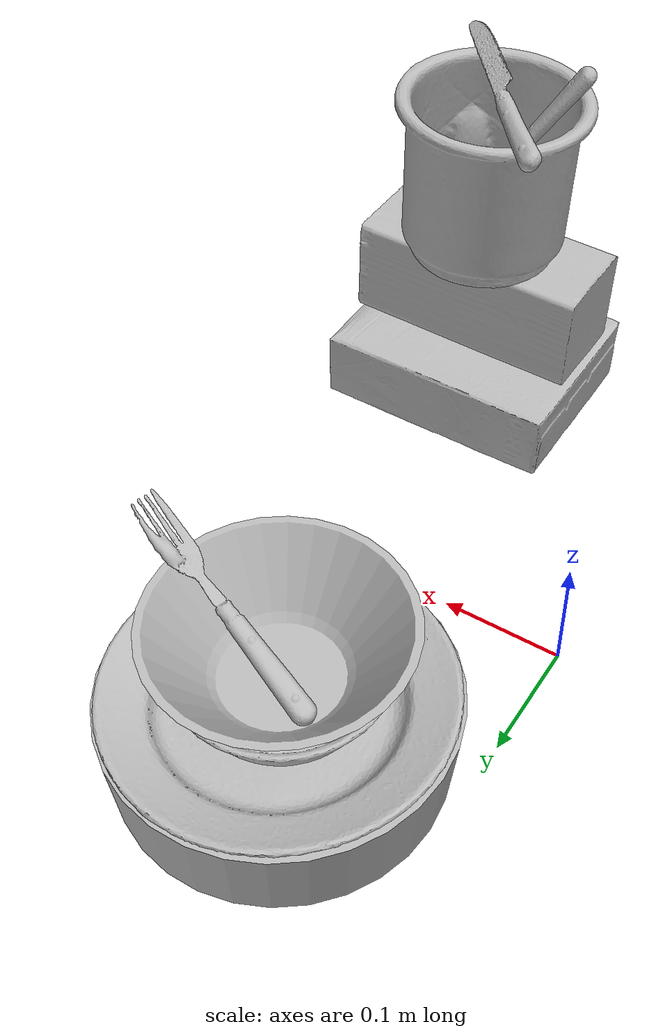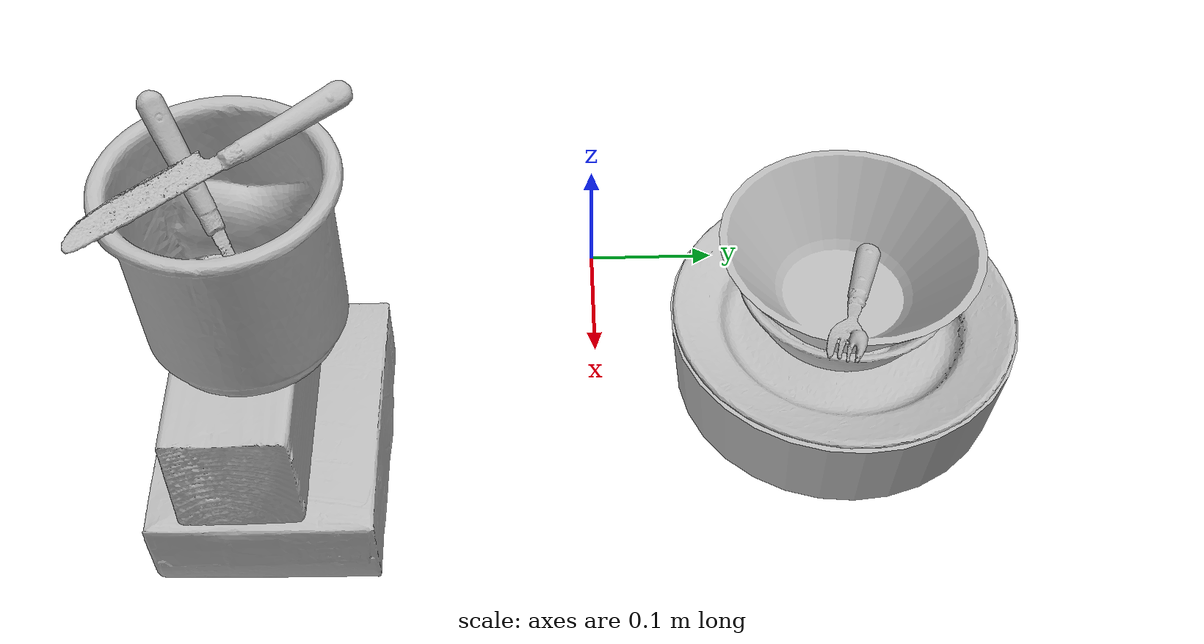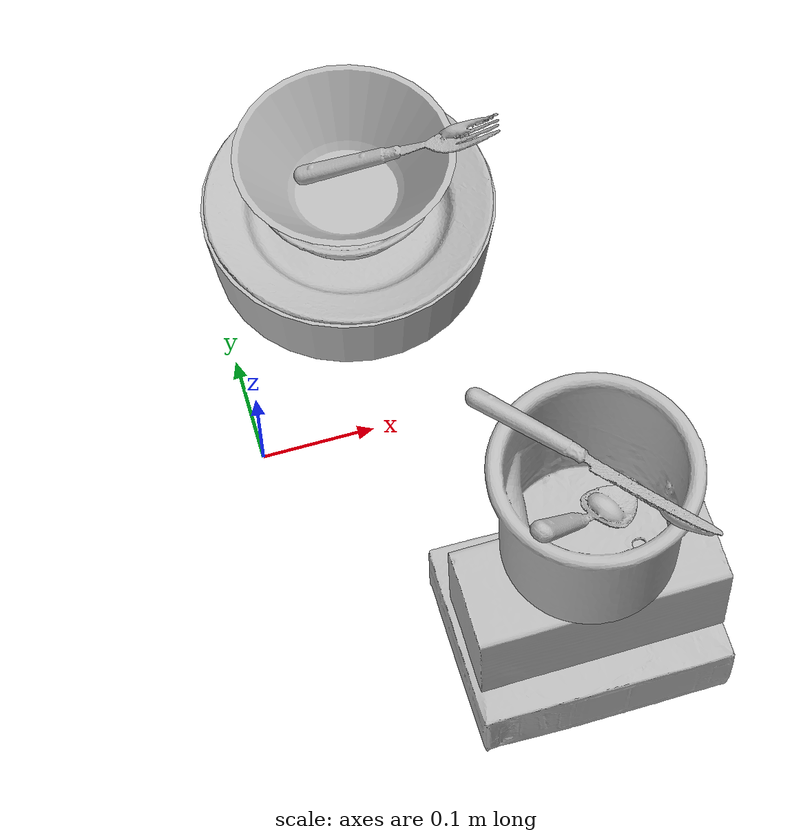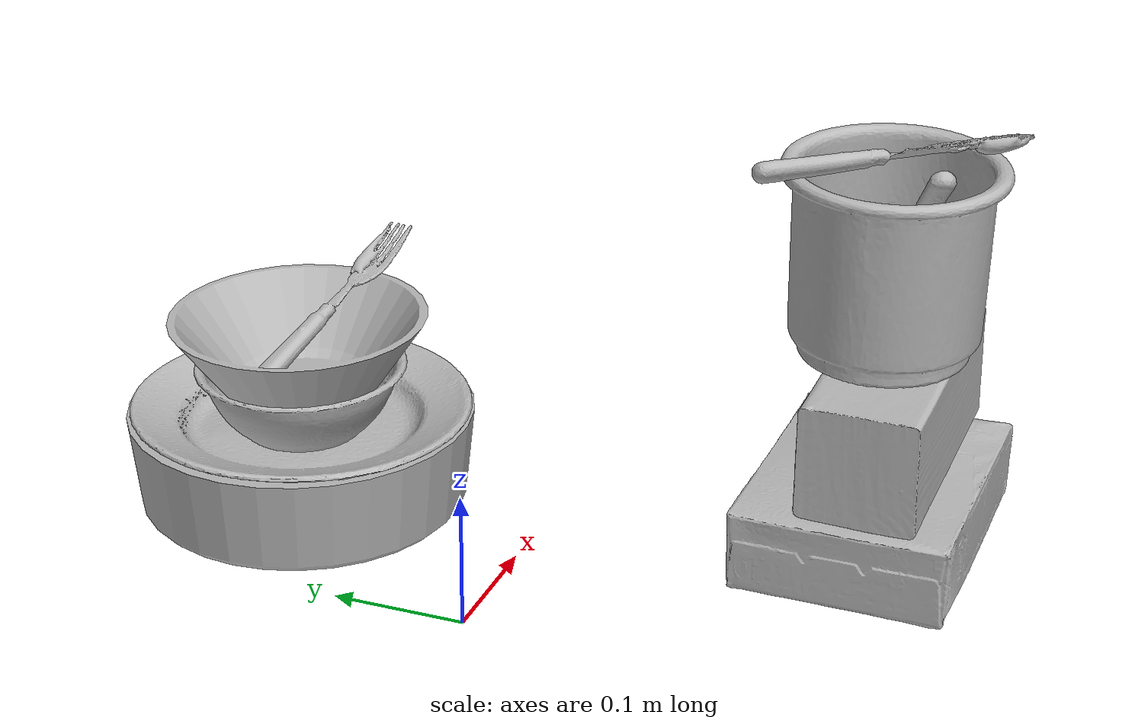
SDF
<?xml version="1.0" ?>
<sdf version="1.4">

  <world name="default">

    <light name="light1" type="point">

      <pose>0 0 1 0 0 0</pose>

      <diffuse>3 3 3 1</diffuse>

      <specular>3 3 3 1</specular>

    </light>

    <light name="light2" type="point">

      <pose>0 0.5 2 0 0 0</pose>

      <diffuse>1 1 1 1</diffuse>

      <specular>1 1 1 1</specular>

    </light>

    <light name="light3" type="point">

      <pose>0 0.5 2 0 0 0</pose>

      <diffuse>3 3 3 1</diffuse>

      <specular>3 3 3 1</specular>

    </light>

    <scene>

      <ambient>0.7 0.7 0.7</ambient>

    </scene>

    <model name="plate1">

      <link name="link_plate1">

        <collision name="default">

          <geometry>

            <mesh>

              <uri>model://pan_tefal/collision_meshes/collision.obj</uri>

              <scale>1.0 1.0 1.0</scale>

            </mesh>

          </geometry>

          <surface>

            <friction>

              <ode>

                <mu>0.5</mu>

                <mu2>0.5</mu2>

              </ode>

            </friction>

          </surface>

        </collision>

        <visual name="default">

          <geometry>

            <mesh>

              <uri>model://pan_tefal/visual_meshes/visual.dae</uri>

              <scale>1.0 1.0 1.0</scale>

            </mesh>

          </geometry>

        </visual>

        <inertial>

          <mass>1.083925485610962</mass>

          <pose>-0.00018002053548116237 3.279013617429882e-05 -0.00851493701338768 0.000819031166138591 -0.00033013701589440335 -0.33186472787035126</pose>

          <inertia>

            <ixx>0.0074822875</ixx>

            <iyy>0.0075305253</iyy>

            <izz>0.013773448</izz>

            <ixy>0</ixy>

            <ixz>0</ixz>

            <iyz>0</iyz>

          </inertia>

        </inertial>

      </link>

      <pose>0.13136087357997894 0.18924929201602936 0.037966348230838776 0.00045067527547456047 0.0004546961856148881 0.006631891285001137</pose>

    </model>

    <model name="plate2">

      <link name="link_plate2">

        <collision name="default">

          <geometry>

            <mesh>

              <uri>model://plate/collision_meshes/collision.obj</uri>

              <scale>1.0 1.0 1.0</scale>

            </mesh>

          </geometry>

          <surface>

            <friction>

              <ode>

                <mu>0.5</mu>

                <mu2>0.5</mu2>

              </ode>

            </friction>

          </surface>

        </collision>

        <visual name="default">

          <geometry>

            <mesh>

              <uri>model://plate/visual_meshes/visual.dae</uri>

              <scale>1.0 1.0 1.0</scale>

            </mesh>

          </geometry>

        </visual>

        <inertial>

          <mass>0.26740342378616333</mass>

          <pose>-0.00060446304269135 0.00027825793949887156 -0.0010561994276940823 0.0022187903743134635 -0.0032254779444460427 0.4526079808055429</pose>

          <inertia>

            <ixx>0.0012509191</ixx>

            <iyy>0.0012389544</iyy>

            <izz>0.00244661</izz>

            <ixy>0</ixy>

            <ixz>0</ixz>

            <iyz>0</iyz>

          </inertia>

        </inertial>

      </link>

      <pose>0.13150139153003693 0.18906836211681366 0.06939858198165894 -0.0005037719592959892 0.008971982772756624 -0.011636055546268287</pose>

    </model>

    <model name="bowl1">

      <link name="link_bowl1">

        <collision name="default">

          <geometry>

            <mesh>

              <uri>model://bowl/collision_meshes/collision.obj</uri>

              <scale>1.0 1.0 1.0</scale>

            </mesh>

          </geometry>

          <surface>

            <friction>

              <ode>

                <mu>0.5</mu>

                <mu2>0.5</mu2>

              </ode>

            </friction>

          </surface>

        </collision>

        <visual name="default">

          <geometry>

            <mesh>

              <uri>model://bowl/visual_meshes/visual.dae</uri>

              <scale>1.0 1.0 1.0</scale>

            </mesh>

          </geometry>

        </visual>

        <inertial>

          <mass>0.062040042132139206</mass>

          <pose>0.00020445157133508474 -0.001030211104080081 -0.0008042659028433263 -0.01576411046463803 0.014546752923574583 0.7140383763158871</pose>

          <inertia>

            <ixx>0.00014251085</ixx>

            <iyy>0.0001393266</iyy>

            <izz>0.00023975229</izz>

            <ixy>0</ixy>

            <ixz>0</ixz>

            <iyz>0</iyz>

          </inertia>

        </inertial>

      </link>

      <pose>0.1291602998971939 0.18689005076885223 0.08747554570436478 0.0025102969258734872 -0.0009751791408932488 -0.015012168248557896</pose>

    </model>

    <model name="bowl2">

      <link name="link_bowl2">

        <collision name="default">

          <geometry>

            <mesh>

              <uri>model://bowl_a/collision_meshes/collision.obj</uri>

              <scale>1.0 1.0 1.0</scale>

            </mesh>

          </geometry>

          <surface>

            <friction>

              <ode>

                <mu>0.5</mu>

                <mu2>0.5</mu2>

              </ode>

            </friction>

          </surface>

        </collision>

        <visual name="default">

          <geometry>

            <mesh>

              <uri>model://bowl_a/visual_meshes/visual.dae</uri>

              <scale>1.0 1.0 1.0</scale>

            </mesh>

          </geometry>

        </visual>

        <inertial>

          <mass>0.2882154881954193</mass>

          <pose>0.00027867534663528204 4.731079752673395e-05 -0.0013765293406322598 -0.0009805311525578244 -0.0010938248781945461 -0.19124031319294812</pose>

          <inertia>

            <ixx>0.00082056265</ixx>

            <iyy>0.0008256004</iyy>

            <izz>0.001459402</izz>

            <ixy>0</ixy>

            <ixz>0</ixz>

            <iyz>0</iyz>

          </inertia>

        </inertial>

      </link>

      <pose>0.12976768612861633 0.18741202354431152 0.12244750559329987 -0.01517433589480697 -0.005101439911474368 -0.0065606029377586784</pose>

    </model>

    <model name="silverware1">

      <link name="link_silverware1">

        <collision name="default">

          <geometry>

            <mesh>

              <uri>model://fork/collision_meshes/collision.obj</uri>

              <scale>1.0 1.0 1.0</scale>

            </mesh>

          </geometry>

          <surface>

            <friction>

              <ode>

                <mu>0.5</mu>

                <mu2>0.5</mu2>

              </ode>

            </friction>

          </surface>

        </collision>

        <visual name="default">

          <geometry>

            <mesh>

              <uri>model://fork/visual_meshes/visual.dae</uri>

              <scale>1.0 1.0 1.0</scale>

            </mesh>

          </geometry>

        </visual>

        <inertial>

          <mass>0.01398836076259613</mass>

          <pose>-0.02957003563642502 0.00046588244731538 0.0003218861238565296 -0.013550934691899108 -0.010977833142804767 0.01445389655901604</pose>

          <inertia>

            <ixx>4.903713e-07</ixx>

            <iyy>3.6519592e-05</iyy>

            <izz>3.673893e-05</izz>

            <ixy>0</ixy>

            <ixz>0</ixz>

            <iyz>0</iyz>

          </inertia>

        </inertial>

      </link>

      <pose>0.17638856172561646 0.18575641512870789 0.1378616988658905 0.045071841078271786 -0.38269668431924736 -0.2868738952709207</pose>

    </model>

    <model name="box1">

      <link name="link_box1">

        <collision name="default">

          <geometry>

            <mesh>

              <uri>model://cracker_box/collision_meshes/collision.obj</uri>

              <scale>1.0 1.0 1.0</scale>

            </mesh>

          </geometry>

          <surface>

            <friction>

              <ode>

                <mu>0.5</mu>

                <mu2>0.5</mu2>

              </ode>

            </friction>

          </surface>

        </collision>

        <visual name="default">

          <geometry>

            <mesh>

              <uri>model://cracker_box/visual_meshes/visual.dae</uri>

              <scale>1.0 1.0 1.0</scale>

            </mesh>

          </geometry>

        </visual>

        <inertial>

          <mass>3.3038947582244873</mass>

          <pose>0.0009464139584451914 0.00025434247800149024 -0.0017029535956680775 -0.00031620753779881404 -0.011106489600569465 0.002546794535826719</pose>

          <inertia>

            <ixx>0.008403633</ixx>

            <iyy>0.013876048</iyy>

            <izz>0.019802397</izz>

            <ixy>0</ixy>

            <ixz>0</ixz>

            <iyz>0</iyz>

          </inertia>

        </inertial>

      </link>

      <pose>0.20958329737186432 -0.2400488257408142 0.035531483590602875 3.1371992967599907 -0.01654419403225981 0.0003333157456196094</pose>

    </model>

    <model name="box2">

      <link name="link_box2">

        <collision name="default">

          <geometry>

            <mesh>

              <uri>model://wood_block/collision_meshes/collision.obj</uri>

              <scale>1.0 1.0 1.0</scale>

            </mesh>

          </geometry>

          <surface>

            <friction>

              <ode>

                <mu>0.5</mu>

                <mu2>0.5</mu2>

              </ode>

            </friction>

          </surface>

        </collision>

        <visual name="default">

          <geometry>

            <mesh>

              <uri>model://wood_block/visual_meshes/visual.dae</uri>

              <scale>1.0 1.0 1.0</scale>

            </mesh>

          </geometry>

        </visual>

        <inertial>

          <mass>1.8317598104476929</mass>

          <pose>-5.813315510749817e-06 -0.000570809468626976 0.0002640858292579651 -0.05220774405774941 -0.005192695034541599 -0.006861378043904631</pose>

          <inertia>

            <ixx>0.0024511719</ixx>

            <iyy>0.0077432534</iyy>

            <izz>0.007714289</izz>

            <ixy>0</ixy>

            <ixz>0</ixz>

            <iyz>0</iyz>

          </inertia>

        </inertial>

      </link>

      <pose>0.20936429500579834 -0.25104403495788574 0.1175508201122284 -3.13348318419967 -0.029875700044544633 -0.0007399752734655707</pose>

    </model>

    <model name="cup1">

      <link name="link_cup1">

        <collision name="default">

          <geometry>

            <mesh>

              <uri>model://f_cups/collision_meshes/collision.obj</uri>

              <scale>2.0 2.0 2.0</scale>

            </mesh>

          </geometry>

          <surface>

            <friction>

              <ode>

                <mu>0.5</mu>

                <mu2>0.5</mu2>

              </ode>

            </friction>

          </surface>

        </collision>

        <visual name="default">

          <geometry>

            <mesh>

              <uri>model://f_cups/visual_meshes/visual.dae</uri>

              <scale>2.0 2.0 2.0</scale>

            </mesh>

          </geometry>

        </visual>

        <inertial>

          <mass>0.8281989693641663</mass>

          <pose>-0.006342937704175711 -0.0012480166042223573 -0.007311076857149601 0.7862278170542254 -0.2607923358756499 -0.18237381375543787</pose>

          <inertia>

            <ixx>0.003114117</ixx>

            <iyy>0.0032667436</iyy>

            <izz>0.0034007723</izz>

            <ixy>0</ixy>

            <ixz>0</ixz>

            <iyz>0</iyz>

          </inertia>

        </inertial>

      </link>

      <pose>0.20798812806606293 -0.24179033935070038 0.2354147583246231 0.016367973711917286 -0.022011751579009576 -0.013287283200589039</pose>

    </model>

    <model name="silverware2">

      <link name="link_silverware2">

        <collision name="default">

          <geometry>

            <mesh>

              <uri>model://knife/collision_meshes/collision.obj</uri>

              <scale>1.0 1.0 1.0</scale>

            </mesh>

          </geometry>

          <surface>

            <friction>

              <ode>

                <mu>0.5</mu>

                <mu2>0.5</mu2>

              </ode>

            </friction>

          </surface>

        </collision>

        <visual name="default">

          <geometry>

            <mesh>

              <uri>model://knife/visual_meshes/visual.dae</uri>

              <scale>1.0 1.0 1.0</scale>

            </mesh>

          </geometry>

        </visual>

        <inertial>

          <mass>0.033610157668590546</mass>

          <pose>-0.02378525771200657 0.0015275131445378065 5.0620201363926753e-05 0.07305356746503441 0.01724842347870745 -0.0074098216508425</pose>

          <inertia>

            <ixx>9.539925e-07</ixx>

            <iyy>0.00012912478</iyy>

            <izz>0.00012943202</izz>

            <ixy>0</ixy>

            <ixz>0</ixz>

            <iyz>0</iyz>

          </inertia>

        </inertial>

      </link>

      <pose>0.2017286717891693 -0.24350394308567047 0.31538549065589905 -0.6782627322477006 -0.009423054302593986 -0.8685322248903766</pose>

    </model>

    <model name="silverware3">

      <link name="link_silverware3">

        <collision name="default">

          <geometry>

            <mesh>

              <uri>model://spoon/collision_meshes/collision.obj</uri>

              <scale>1.0 1.0 1.0</scale>

            </mesh>

          </geometry>

          <surface>

            <friction>

              <ode>

                <mu>0.5</mu>

                <mu2>0.5</mu2>

              </ode>

            </friction>

          </surface>

        </collision>

        <visual name="default">

          <geometry>

            <mesh>

              <uri>model://spoon/visual_meshes/visual.dae</uri>

              <scale>1.0 1.0 1.0</scale>

            </mesh>

          </geometry>

        </visual>

        <inertial>

          <mass>0.03036251850426197</mass>

          <pose>-0.005526314955204725 -0.0016034168656915426 -0.0007271655485965312 0.035217258575681115 -0.03906584346489495 0.006150616147242728</pose>

          <inertia>

            <ixx>1.6888126e-06</ixx>

            <iyy>0.00011552838</iyy>

            <izz>0.00011636122</izz>

            <ixy>0</ixy>

            <ixz>0</ixz>

            <iyz>0</iyz>

          </inertia>

        </inertial>

      </link>

      <pose>0.19489243626594543 -0.25013333559036255 0.24992676079273224 0.060939503696598805 0.9071454796787455 0.6611839469077688</pose>

    </model>

  </world>

</sdf>
